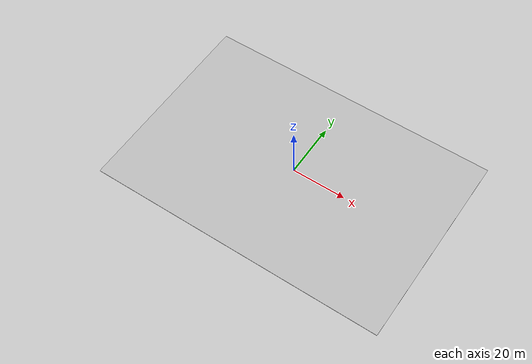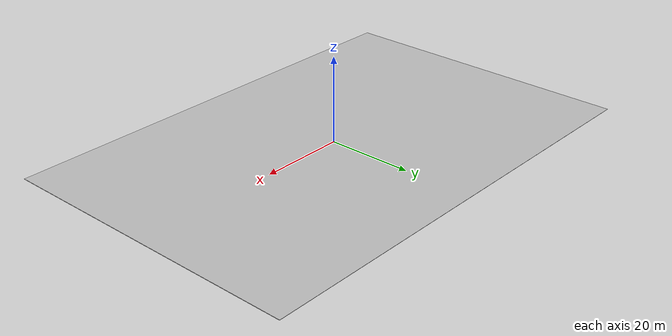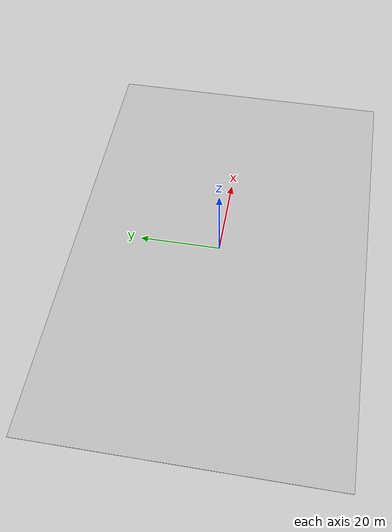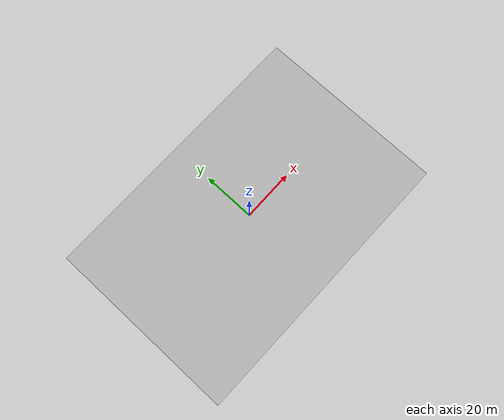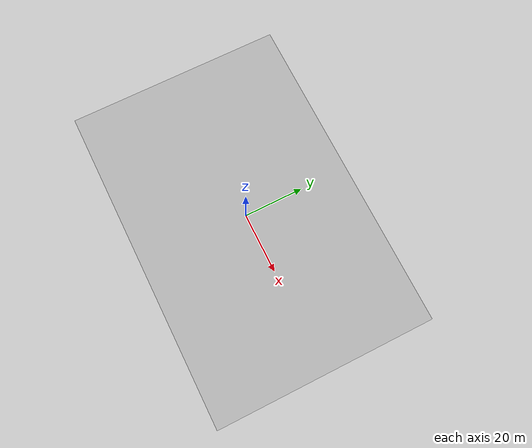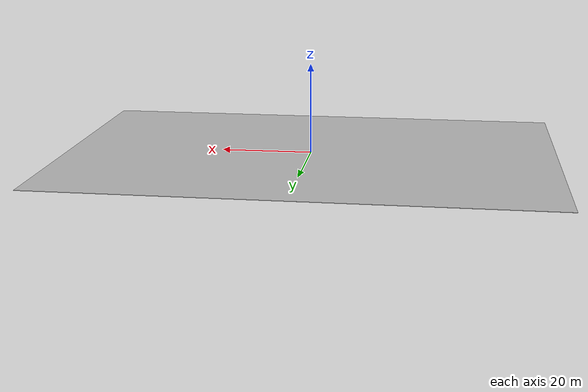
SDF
<?xml version="1.0" ?>
<sdf version='1.4'>
  <world name='default'>

    <physics type='ode'>
      <max_step_size>0.001</max_step_size>
      <real_time_factor>1</real_time_factor>
      <real_time_update_rate>1000</real_time_update_rate>
      <gravity>0 0 -9.8</gravity>
    </physics>

    <spherical_coordinates>
      <surface_model>EARTH_WGS84</surface_model>
      <latitude_deg>24.4793194</latitude_deg>
      <longitude_deg>54.6105446</longitude_deg>
      <elevation>18</elevation>
      <heading_deg>0</heading_deg>
    </spherical_coordinates>

    <!-- A global light source -->
   <scene>
      <sky>
        <clouds>
          <speed>12</speed>
        </clouds>
      </sky>
   </scene>

    <include>
      <uri>model://sun</uri>
    </include>

    <include>
      <uri>model://arena</uri>
    </include>

    <light name='point_light_0' type='point'>
      <pose frame=''>0 24.5 3 0 0 0</pose>
      <diffuse>0.5 0.5 0.5 1</diffuse>
      <specular>0.1 0.1 0.1 1</specular>
      <attenuation>
        <range>20</range>
        <constant>0.1</constant>
        <linear>0.1</linear>
        <quadratic>0.01</quadratic>
      </attenuation>
      <cast_shadows>0</cast_shadows>
      <direction>0 0 -1</direction>
    </light>

    <gui fullscreen='0'>
      <camera name='user_camera'>
        <pose>159.908 -1.39949 83.4967 0 0.559643 -3.11099</pose>
        <view_controller>orbit</view_controller>
      </camera>
    </gui>
  </world>
</sdf>

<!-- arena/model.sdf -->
<sdf version="1.4">
  <model name="arena">
    <static>true</static>
    <link name="link_arena">
      <pose>0 0 -0.04 0 0 1.5708</pose>
      <collision name="collision">
        <geometry>
          <box>
            <size>72.63 108.945 .1</size>
          </box>
        </geometry>
      </collision>
      <visual name="visual">
        <transparency>0.0001</transparency>
        <cast_shadows>false</cast_shadows>
        <geometry>
          <box>
            <size>72.63 108.945 .1</size>
          </box>
        </geometry>
        <material>
          <script>
            <uri>model://arena/materials/scripts</uri>
            <uri>model://arena/materials/textures</uri>
            <name>vrc/arena</name>
          </script>
        </material>
      </visual>
    </link>

    <static>true</static>
    <link name="link_asphalt">
      <pose>0 0 -0.04 0 0 1.5708</pose>
      <collision name="collision">
        <geometry>
          <box>
            <size>72.63 108.945 .1</size>
          </box>
        </geometry>
      </collision>
      <visual name="visual">
        <cast_shadows>false</cast_shadows>
        <geometry>
          <box>
            <size>72.63 108.945 .1</size>
          </box>
        </geometry>
        <material>
          <script>
            <uri>model://arena/materials/scripts</uri>
            <uri>model://arena/materials/textures</uri>
            <name>vrc/asphalt</name>
          </script>
        </material>
      </visual>
    </link>
  </model>

  <model name="arena_pathless">
    <static>true</static>
    <link name="link_arena">
      <pose>0 0 -0.04 0 0 1.5708</pose>
      <collision name="collision">
        <geometry>
          <box>
            <size>72.63 108.945 .1</size>
          </box>
        </geometry>
      </collision>
      <visual name="visual">
        <transparency>0.0001</transparency>
        <cast_shadows>false</cast_shadows>
        <geometry>
          <box>
            <size>72.63 108.945 .1</size>
          </box>
        </geometry>
        <material>
          <script>
            <uri>model://arena/materials/scripts</uri>
            <uri>model://arena/materials/textures</uri>
            <name>vrc/arena_pathless</name>
          </script>
        </material>
      </visual>
    </link>

    <static>true</static>
    <link name="link_asphalt">
      <pose>0 0 -0.04 0 0 1.5708</pose>
      <collision name="collision">
        <geometry>
          <box>
            <size>72.63 108.945 .1</size>
          </box>
        </geometry>
      </collision>
      <visual name="visual">
        <cast_shadows>false</cast_shadows>
        <geometry>
          <box>
            <size>72.63 108.945 .1</size>
          </box>
        </geometry>
        <material>
          <script>
            <uri>model://arena/materials/scripts</uri>
            <uri>model://arena/materials/textures</uri>
            <name>vrc/asphalt</name>
          </script>
        </material>
      </visual>
    </link>
  </model>
</sdf>
